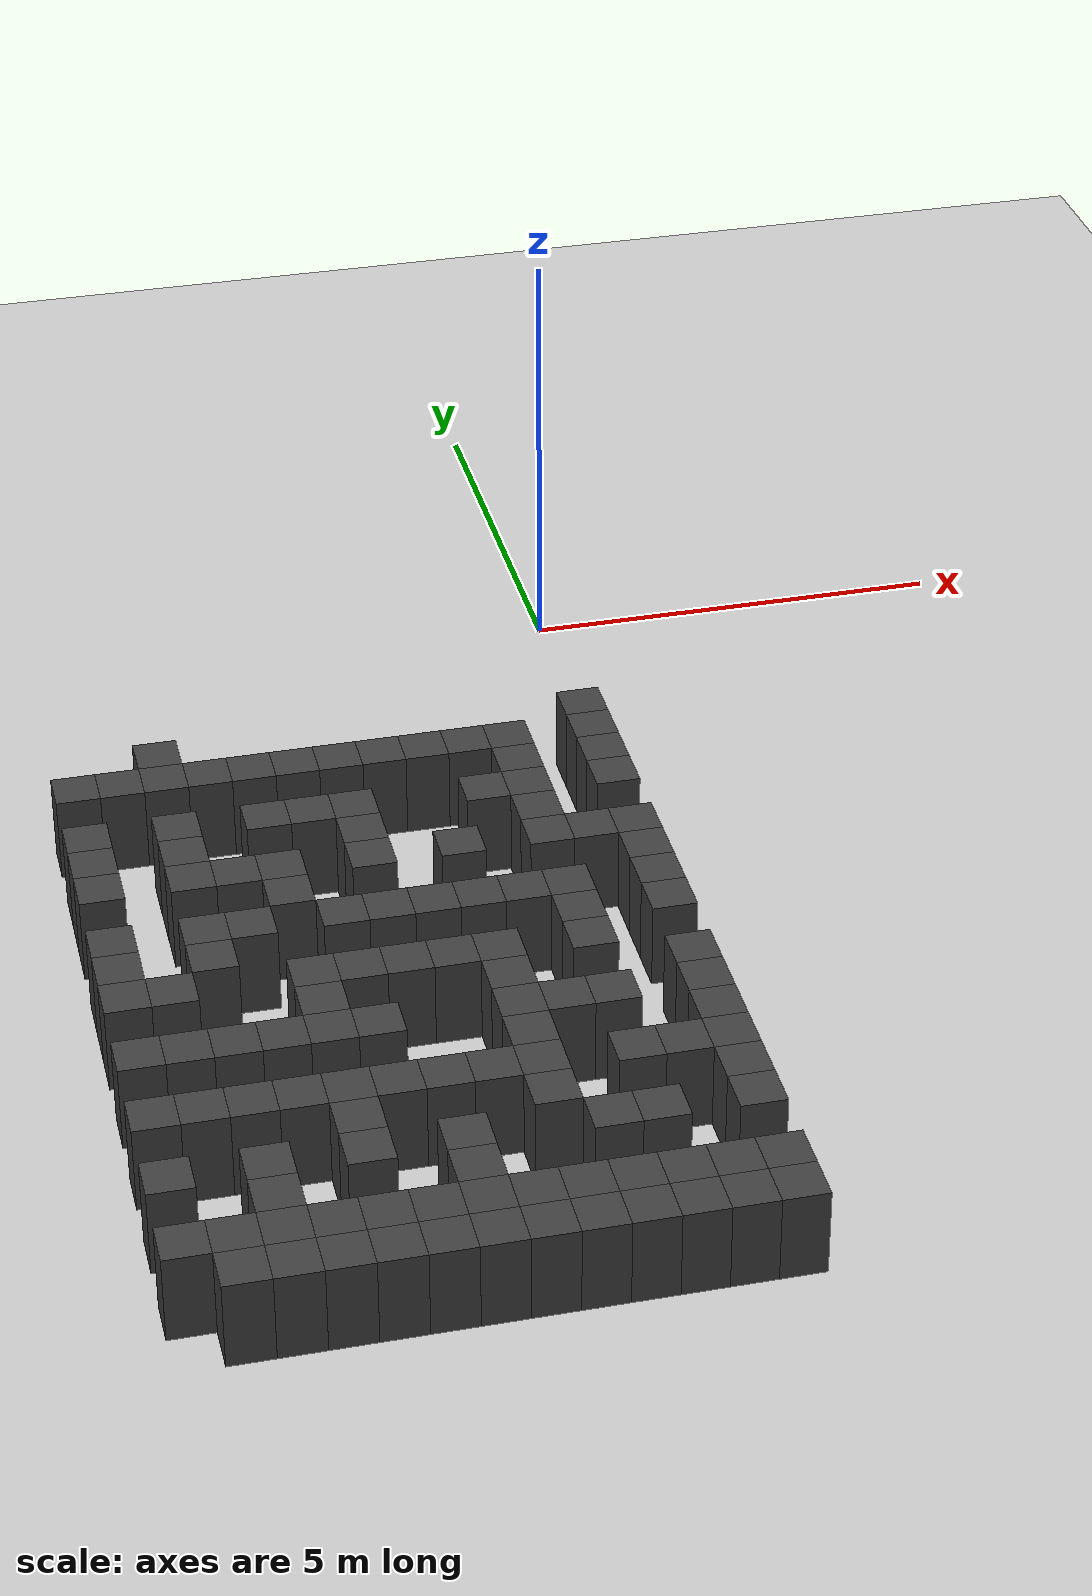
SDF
<sdf version="1.7">
 <world name="map_16734">
  <model name="ground_plane">
   <static>true</static>
   <link name="link">
    <collision name="collision">
     <geometry><plane><normal>0 0 1</normal><size>200 200</size></plane></geometry>
    </collision>
    <visual name="visual">
     <geometry><plane><normal>0 0 1</normal><size>200 200</size></plane></geometry>
     <material><ambient>0.8 0.8 0.8 1</ambient><diffuse>0.8 0.8 0.8 1</diffuse></material>
    </visual>
   </link>
  </model>
  <model name="maze_environment">
   <static>true</static>
   <link name="wall_763">
    <pose>-5.250 -3.250 0.500 0 0 0</pose>
    <collision name="col"><geometry><box><size>0.5 0.5 1.0</size></box></geometry></collision>
    <visual name="vis">
     <geometry><box><size>0.5 0.5 1.0</size></box></geometry>
     <material><ambient>0.15 0.15 0.15 1</ambient><diffuse>0.25 0.25 0.25 1</diffuse></material>
    </visual>
   </link>
   <link name="wall_764">
    <pose>-0.250 -3.250 0.500 0 0 0</pose>
    <collision name="col"><geometry><box><size>0.5 0.5 1.0</size></box></geometry></collision>
    <visual name="vis">
     <geometry><box><size>0.5 0.5 1.0</size></box></geometry>
     <material><ambient>0.15 0.15 0.15 1</ambient><diffuse>0.25 0.25 0.25 1</diffuse></material>
    </visual>
   </link>
   <link name="wall_782">
    <pose>-6.250 -3.750 0.500 0 0 0</pose>
    <collision name="col"><geometry><box><size>0.5 0.5 1.0</size></box></geometry></collision>
    <visual name="vis">
     <geometry><box><size>0.5 0.5 1.0</size></box></geometry>
     <material><ambient>0.15 0.15 0.15 1</ambient><diffuse>0.25 0.25 0.25 1</diffuse></material>
    </visual>
   </link>
   <link name="wall_783">
    <pose>-5.750 -3.750 0.500 0 0 0</pose>
    <collision name="col"><geometry><box><size>0.5 0.5 1.0</size></box></geometry></collision>
    <visual name="vis">
     <geometry><box><size>0.5 0.5 1.0</size></box></geometry>
     <material><ambient>0.15 0.15 0.15 1</ambient><diffuse>0.25 0.25 0.25 1</diffuse></material>
    </visual>
   </link>
   <link name="wall_784">
    <pose>-5.250 -3.750 0.500 0 0 0</pose>
    <collision name="col"><geometry><box><size>0.5 0.5 1.0</size></box></geometry></collision>
    <visual name="vis">
     <geometry><box><size>0.5 0.5 1.0</size></box></geometry>
     <material><ambient>0.15 0.15 0.15 1</ambient><diffuse>0.25 0.25 0.25 1</diffuse></material>
    </visual>
   </link>
   <link name="wall_785">
    <pose>-4.750 -3.750 0.500 0 0 0</pose>
    <collision name="col"><geometry><box><size>0.5 0.5 1.0</size></box></geometry></collision>
    <visual name="vis">
     <geometry><box><size>0.5 0.5 1.0</size></box></geometry>
     <material><ambient>0.15 0.15 0.15 1</ambient><diffuse>0.25 0.25 0.25 1</diffuse></material>
    </visual>
   </link>
   <link name="wall_786">
    <pose>-4.250 -3.750 0.500 0 0 0</pose>
    <collision name="col"><geometry><box><size>0.5 0.5 1.0</size></box></geometry></collision>
    <visual name="vis">
     <geometry><box><size>0.5 0.5 1.0</size></box></geometry>
     <material><ambient>0.15 0.15 0.15 1</ambient><diffuse>0.25 0.25 0.25 1</diffuse></material>
    </visual>
   </link>
   <link name="wall_787">
    <pose>-3.750 -3.750 0.500 0 0 0</pose>
    <collision name="col"><geometry><box><size>0.5 0.5 1.0</size></box></geometry></collision>
    <visual name="vis">
     <geometry><box><size>0.5 0.5 1.0</size></box></geometry>
     <material><ambient>0.15 0.15 0.15 1</ambient><diffuse>0.25 0.25 0.25 1</diffuse></material>
    </visual>
   </link>
   <link name="wall_788">
    <pose>-3.250 -3.750 0.500 0 0 0</pose>
    <collision name="col"><geometry><box><size>0.5 0.5 1.0</size></box></geometry></collision>
    <visual name="vis">
     <geometry><box><size>0.5 0.5 1.0</size></box></geometry>
     <material><ambient>0.15 0.15 0.15 1</ambient><diffuse>0.25 0.25 0.25 1</diffuse></material>
    </visual>
   </link>
   <link name="wall_789">
    <pose>-2.750 -3.750 0.500 0 0 0</pose>
    <collision name="col"><geometry><box><size>0.5 0.5 1.0</size></box></geometry></collision>
    <visual name="vis">
     <geometry><box><size>0.5 0.5 1.0</size></box></geometry>
     <material><ambient>0.15 0.15 0.15 1</ambient><diffuse>0.25 0.25 0.25 1</diffuse></material>
    </visual>
   </link>
   <link name="wall_790">
    <pose>-2.250 -3.750 0.500 0 0 0</pose>
    <collision name="col"><geometry><box><size>0.5 0.5 1.0</size></box></geometry></collision>
    <visual name="vis">
     <geometry><box><size>0.5 0.5 1.0</size></box></geometry>
     <material><ambient>0.15 0.15 0.15 1</ambient><diffuse>0.25 0.25 0.25 1</diffuse></material>
    </visual>
   </link>
   <link name="wall_791">
    <pose>-1.750 -3.750 0.500 0 0 0</pose>
    <collision name="col"><geometry><box><size>0.5 0.5 1.0</size></box></geometry></collision>
    <visual name="vis">
     <geometry><box><size>0.5 0.5 1.0</size></box></geometry>
     <material><ambient>0.15 0.15 0.15 1</ambient><diffuse>0.25 0.25 0.25 1</diffuse></material>
    </visual>
   </link>
   <link name="wall_792">
    <pose>-1.250 -3.750 0.500 0 0 0</pose>
    <collision name="col"><geometry><box><size>0.5 0.5 1.0</size></box></geometry></collision>
    <visual name="vis">
     <geometry><box><size>0.5 0.5 1.0</size></box></geometry>
     <material><ambient>0.15 0.15 0.15 1</ambient><diffuse>0.25 0.25 0.25 1</diffuse></material>
    </visual>
   </link>
   <link name="wall_793">
    <pose>-0.250 -3.750 0.500 0 0 0</pose>
    <collision name="col"><geometry><box><size>0.5 0.5 1.0</size></box></geometry></collision>
    <visual name="vis">
     <geometry><box><size>0.5 0.5 1.0</size></box></geometry>
     <material><ambient>0.15 0.15 0.15 1</ambient><diffuse>0.25 0.25 0.25 1</diffuse></material>
    </visual>
   </link>
   <link name="wall_815">
    <pose>-1.250 -4.250 0.500 0 0 0</pose>
    <collision name="col"><geometry><box><size>0.5 0.5 1.0</size></box></geometry></collision>
    <visual name="vis">
     <geometry><box><size>0.5 0.5 1.0</size></box></geometry>
     <material><ambient>0.15 0.15 0.15 1</ambient><diffuse>0.25 0.25 0.25 1</diffuse></material>
    </visual>
   </link>
   <link name="wall_816">
    <pose>-0.250 -4.250 0.500 0 0 0</pose>
    <collision name="col"><geometry><box><size>0.5 0.5 1.0</size></box></geometry></collision>
    <visual name="vis">
     <geometry><box><size>0.5 0.5 1.0</size></box></geometry>
     <material><ambient>0.15 0.15 0.15 1</ambient><diffuse>0.25 0.25 0.25 1</diffuse></material>
    </visual>
   </link>
   <link name="wall_832">
    <pose>-6.250 -4.750 0.500 0 0 0</pose>
    <collision name="col"><geometry><box><size>0.5 0.5 1.0</size></box></geometry></collision>
    <visual name="vis">
     <geometry><box><size>0.5 0.5 1.0</size></box></geometry>
     <material><ambient>0.15 0.15 0.15 1</ambient><diffuse>0.25 0.25 0.25 1</diffuse></material>
    </visual>
   </link>
   <link name="wall_833">
    <pose>-5.250 -4.750 0.500 0 0 0</pose>
    <collision name="col"><geometry><box><size>0.5 0.5 1.0</size></box></geometry></collision>
    <visual name="vis">
     <geometry><box><size>0.5 0.5 1.0</size></box></geometry>
     <material><ambient>0.15 0.15 0.15 1</ambient><diffuse>0.25 0.25 0.25 1</diffuse></material>
    </visual>
   </link>
   <link name="wall_834">
    <pose>-4.250 -4.750 0.500 0 0 0</pose>
    <collision name="col"><geometry><box><size>0.5 0.5 1.0</size></box></geometry></collision>
    <visual name="vis">
     <geometry><box><size>0.5 0.5 1.0</size></box></geometry>
     <material><ambient>0.15 0.15 0.15 1</ambient><diffuse>0.25 0.25 0.25 1</diffuse></material>
    </visual>
   </link>
   <link name="wall_835">
    <pose>-3.750 -4.750 0.500 0 0 0</pose>
    <collision name="col"><geometry><box><size>0.5 0.5 1.0</size></box></geometry></collision>
    <visual name="vis">
     <geometry><box><size>0.5 0.5 1.0</size></box></geometry>
     <material><ambient>0.15 0.15 0.15 1</ambient><diffuse>0.25 0.25 0.25 1</diffuse></material>
    </visual>
   </link>
   <link name="wall_836">
    <pose>-3.250 -4.750 0.500 0 0 0</pose>
    <collision name="col"><geometry><box><size>0.5 0.5 1.0</size></box></geometry></collision>
    <visual name="vis">
     <geometry><box><size>0.5 0.5 1.0</size></box></geometry>
     <material><ambient>0.15 0.15 0.15 1</ambient><diffuse>0.25 0.25 0.25 1</diffuse></material>
    </visual>
   </link>
   <link name="wall_837">
    <pose>-1.750 -4.750 0.500 0 0 0</pose>
    <collision name="col"><geometry><box><size>0.5 0.5 1.0</size></box></geometry></collision>
    <visual name="vis">
     <geometry><box><size>0.5 0.5 1.0</size></box></geometry>
     <material><ambient>0.15 0.15 0.15 1</ambient><diffuse>0.25 0.25 0.25 1</diffuse></material>
    </visual>
   </link>
   <link name="wall_838">
    <pose>-1.250 -4.750 0.500 0 0 0</pose>
    <collision name="col"><geometry><box><size>0.5 0.5 1.0</size></box></geometry></collision>
    <visual name="vis">
     <geometry><box><size>0.5 0.5 1.0</size></box></geometry>
     <material><ambient>0.15 0.15 0.15 1</ambient><diffuse>0.25 0.25 0.25 1</diffuse></material>
    </visual>
   </link>
   <link name="wall_839">
    <pose>-0.250 -4.750 0.500 0 0 0</pose>
    <collision name="col"><geometry><box><size>0.5 0.5 1.0</size></box></geometry></collision>
    <visual name="vis">
     <geometry><box><size>0.5 0.5 1.0</size></box></geometry>
     <material><ambient>0.15 0.15 0.15 1</ambient><diffuse>0.25 0.25 0.25 1</diffuse></material>
    </visual>
   </link>
   <link name="wall_864">
    <pose>-6.250 -5.250 0.500 0 0 0</pose>
    <collision name="col"><geometry><box><size>0.5 0.5 1.0</size></box></geometry></collision>
    <visual name="vis">
     <geometry><box><size>0.5 0.5 1.0</size></box></geometry>
     <material><ambient>0.15 0.15 0.15 1</ambient><diffuse>0.25 0.25 0.25 1</diffuse></material>
    </visual>
   </link>
   <link name="wall_865">
    <pose>-5.250 -5.250 0.500 0 0 0</pose>
    <collision name="col"><geometry><box><size>0.5 0.5 1.0</size></box></geometry></collision>
    <visual name="vis">
     <geometry><box><size>0.5 0.5 1.0</size></box></geometry>
     <material><ambient>0.15 0.15 0.15 1</ambient><diffuse>0.25 0.25 0.25 1</diffuse></material>
    </visual>
   </link>
   <link name="wall_866">
    <pose>-3.250 -5.250 0.500 0 0 0</pose>
    <collision name="col"><geometry><box><size>0.5 0.5 1.0</size></box></geometry></collision>
    <visual name="vis">
     <geometry><box><size>0.5 0.5 1.0</size></box></geometry>
     <material><ambient>0.15 0.15 0.15 1</ambient><diffuse>0.25 0.25 0.25 1</diffuse></material>
    </visual>
   </link>
   <link name="wall_867">
    <pose>-1.250 -5.250 0.500 0 0 0</pose>
    <collision name="col"><geometry><box><size>0.5 0.5 1.0</size></box></geometry></collision>
    <visual name="vis">
     <geometry><box><size>0.5 0.5 1.0</size></box></geometry>
     <material><ambient>0.15 0.15 0.15 1</ambient><diffuse>0.25 0.25 0.25 1</diffuse></material>
    </visual>
   </link>
   <link name="wall_884">
    <pose>-6.250 -5.750 0.500 0 0 0</pose>
    <collision name="col"><geometry><box><size>0.5 0.5 1.0</size></box></geometry></collision>
    <visual name="vis">
     <geometry><box><size>0.5 0.5 1.0</size></box></geometry>
     <material><ambient>0.15 0.15 0.15 1</ambient><diffuse>0.25 0.25 0.25 1</diffuse></material>
    </visual>
   </link>
   <link name="wall_885">
    <pose>-5.250 -5.750 0.500 0 0 0</pose>
    <collision name="col"><geometry><box><size>0.5 0.5 1.0</size></box></geometry></collision>
    <visual name="vis">
     <geometry><box><size>0.5 0.5 1.0</size></box></geometry>
     <material><ambient>0.15 0.15 0.15 1</ambient><diffuse>0.25 0.25 0.25 1</diffuse></material>
    </visual>
   </link>
   <link name="wall_886">
    <pose>-4.750 -5.750 0.500 0 0 0</pose>
    <collision name="col"><geometry><box><size>0.5 0.5 1.0</size></box></geometry></collision>
    <visual name="vis">
     <geometry><box><size>0.5 0.5 1.0</size></box></geometry>
     <material><ambient>0.15 0.15 0.15 1</ambient><diffuse>0.25 0.25 0.25 1</diffuse></material>
    </visual>
   </link>
   <link name="wall_887">
    <pose>-4.250 -5.750 0.500 0 0 0</pose>
    <collision name="col"><geometry><box><size>0.5 0.5 1.0</size></box></geometry></collision>
    <visual name="vis">
     <geometry><box><size>0.5 0.5 1.0</size></box></geometry>
     <material><ambient>0.15 0.15 0.15 1</ambient><diffuse>0.25 0.25 0.25 1</diffuse></material>
    </visual>
   </link>
   <link name="wall_888">
    <pose>-3.250 -5.750 0.500 0 0 0</pose>
    <collision name="col"><geometry><box><size>0.5 0.5 1.0</size></box></geometry></collision>
    <visual name="vis">
     <geometry><box><size>0.5 0.5 1.0</size></box></geometry>
     <material><ambient>0.15 0.15 0.15 1</ambient><diffuse>0.25 0.25 0.25 1</diffuse></material>
    </visual>
   </link>
   <link name="wall_889">
    <pose>-2.250 -5.750 0.500 0 0 0</pose>
    <collision name="col"><geometry><box><size>0.5 0.5 1.0</size></box></geometry></collision>
    <visual name="vis">
     <geometry><box><size>0.5 0.5 1.0</size></box></geometry>
     <material><ambient>0.15 0.15 0.15 1</ambient><diffuse>0.25 0.25 0.25 1</diffuse></material>
    </visual>
   </link>
   <link name="wall_890">
    <pose>-1.250 -5.750 0.500 0 0 0</pose>
    <collision name="col"><geometry><box><size>0.5 0.5 1.0</size></box></geometry></collision>
    <visual name="vis">
     <geometry><box><size>0.5 0.5 1.0</size></box></geometry>
     <material><ambient>0.15 0.15 0.15 1</ambient><diffuse>0.25 0.25 0.25 1</diffuse></material>
    </visual>
   </link>
   <link name="wall_891">
    <pose>-0.750 -5.750 0.500 0 0 0</pose>
    <collision name="col"><geometry><box><size>0.5 0.5 1.0</size></box></geometry></collision>
    <visual name="vis">
     <geometry><box><size>0.5 0.5 1.0</size></box></geometry>
     <material><ambient>0.15 0.15 0.15 1</ambient><diffuse>0.25 0.25 0.25 1</diffuse></material>
    </visual>
   </link>
   <link name="wall_892">
    <pose>-0.250 -5.750 0.500 0 0 0</pose>
    <collision name="col"><geometry><box><size>0.5 0.5 1.0</size></box></geometry></collision>
    <visual name="vis">
     <geometry><box><size>0.5 0.5 1.0</size></box></geometry>
     <material><ambient>0.15 0.15 0.15 1</ambient><diffuse>0.25 0.25 0.25 1</diffuse></material>
    </visual>
   </link>
   <link name="wall_913">
    <pose>-4.250 -6.250 0.500 0 0 0</pose>
    <collision name="col"><geometry><box><size>0.5 0.5 1.0</size></box></geometry></collision>
    <visual name="vis">
     <geometry><box><size>0.5 0.5 1.0</size></box></geometry>
     <material><ambient>0.15 0.15 0.15 1</ambient><diffuse>0.25 0.25 0.25 1</diffuse></material>
    </visual>
   </link>
   <link name="wall_914">
    <pose>-0.250 -6.250 0.500 0 0 0</pose>
    <collision name="col"><geometry><box><size>0.5 0.5 1.0</size></box></geometry></collision>
    <visual name="vis">
     <geometry><box><size>0.5 0.5 1.0</size></box></geometry>
     <material><ambient>0.15 0.15 0.15 1</ambient><diffuse>0.25 0.25 0.25 1</diffuse></material>
    </visual>
   </link>
   <link name="wall_929">
    <pose>-6.250 -6.750 0.500 0 0 0</pose>
    <collision name="col"><geometry><box><size>0.5 0.5 1.0</size></box></geometry></collision>
    <visual name="vis">
     <geometry><box><size>0.5 0.5 1.0</size></box></geometry>
     <material><ambient>0.15 0.15 0.15 1</ambient><diffuse>0.25 0.25 0.25 1</diffuse></material>
    </visual>
   </link>
   <link name="wall_930">
    <pose>-5.250 -6.750 0.500 0 0 0</pose>
    <collision name="col"><geometry><box><size>0.5 0.5 1.0</size></box></geometry></collision>
    <visual name="vis">
     <geometry><box><size>0.5 0.5 1.0</size></box></geometry>
     <material><ambient>0.15 0.15 0.15 1</ambient><diffuse>0.25 0.25 0.25 1</diffuse></material>
    </visual>
   </link>
   <link name="wall_931">
    <pose>-4.750 -6.750 0.500 0 0 0</pose>
    <collision name="col"><geometry><box><size>0.5 0.5 1.0</size></box></geometry></collision>
    <visual name="vis">
     <geometry><box><size>0.5 0.5 1.0</size></box></geometry>
     <material><ambient>0.15 0.15 0.15 1</ambient><diffuse>0.25 0.25 0.25 1</diffuse></material>
    </visual>
   </link>
   <link name="wall_932">
    <pose>-3.750 -6.750 0.500 0 0 0</pose>
    <collision name="col"><geometry><box><size>0.5 0.5 1.0</size></box></geometry></collision>
    <visual name="vis">
     <geometry><box><size>0.5 0.5 1.0</size></box></geometry>
     <material><ambient>0.15 0.15 0.15 1</ambient><diffuse>0.25 0.25 0.25 1</diffuse></material>
    </visual>
   </link>
   <link name="wall_933">
    <pose>-3.250 -6.750 0.500 0 0 0</pose>
    <collision name="col"><geometry><box><size>0.5 0.5 1.0</size></box></geometry></collision>
    <visual name="vis">
     <geometry><box><size>0.5 0.5 1.0</size></box></geometry>
     <material><ambient>0.15 0.15 0.15 1</ambient><diffuse>0.25 0.25 0.25 1</diffuse></material>
    </visual>
   </link>
   <link name="wall_934">
    <pose>-2.750 -6.750 0.500 0 0 0</pose>
    <collision name="col"><geometry><box><size>0.5 0.5 1.0</size></box></geometry></collision>
    <visual name="vis">
     <geometry><box><size>0.5 0.5 1.0</size></box></geometry>
     <material><ambient>0.15 0.15 0.15 1</ambient><diffuse>0.25 0.25 0.25 1</diffuse></material>
    </visual>
   </link>
   <link name="wall_935">
    <pose>-2.250 -6.750 0.500 0 0 0</pose>
    <collision name="col"><geometry><box><size>0.5 0.5 1.0</size></box></geometry></collision>
    <visual name="vis">
     <geometry><box><size>0.5 0.5 1.0</size></box></geometry>
     <material><ambient>0.15 0.15 0.15 1</ambient><diffuse>0.25 0.25 0.25 1</diffuse></material>
    </visual>
   </link>
   <link name="wall_936">
    <pose>-1.750 -6.750 0.500 0 0 0</pose>
    <collision name="col"><geometry><box><size>0.5 0.5 1.0</size></box></geometry></collision>
    <visual name="vis">
     <geometry><box><size>0.5 0.5 1.0</size></box></geometry>
     <material><ambient>0.15 0.15 0.15 1</ambient><diffuse>0.25 0.25 0.25 1</diffuse></material>
    </visual>
   </link>
   <link name="wall_937">
    <pose>-1.250 -6.750 0.500 0 0 0</pose>
    <collision name="col"><geometry><box><size>0.5 0.5 1.0</size></box></geometry></collision>
    <visual name="vis">
     <geometry><box><size>0.5 0.5 1.0</size></box></geometry>
     <material><ambient>0.15 0.15 0.15 1</ambient><diffuse>0.25 0.25 0.25 1</diffuse></material>
    </visual>
   </link>
   <link name="wall_938">
    <pose>-0.250 -6.750 0.500 0 0 0</pose>
    <collision name="col"><geometry><box><size>0.5 0.5 1.0</size></box></geometry></collision>
    <visual name="vis">
     <geometry><box><size>0.5 0.5 1.0</size></box></geometry>
     <material><ambient>0.15 0.15 0.15 1</ambient><diffuse>0.25 0.25 0.25 1</diffuse></material>
    </visual>
   </link>
   <link name="wall_959">
    <pose>-6.250 -7.250 0.500 0 0 0</pose>
    <collision name="col"><geometry><box><size>0.5 0.5 1.0</size></box></geometry></collision>
    <visual name="vis">
     <geometry><box><size>0.5 0.5 1.0</size></box></geometry>
     <material><ambient>0.15 0.15 0.15 1</ambient><diffuse>0.25 0.25 0.25 1</diffuse></material>
    </visual>
   </link>
   <link name="wall_960">
    <pose>-5.250 -7.250 0.500 0 0 0</pose>
    <collision name="col"><geometry><box><size>0.5 0.5 1.0</size></box></geometry></collision>
    <visual name="vis">
     <geometry><box><size>0.5 0.5 1.0</size></box></geometry>
     <material><ambient>0.15 0.15 0.15 1</ambient><diffuse>0.25 0.25 0.25 1</diffuse></material>
    </visual>
   </link>
   <link name="wall_961">
    <pose>-1.250 -7.250 0.500 0 0 0</pose>
    <collision name="col"><geometry><box><size>0.5 0.5 1.0</size></box></geometry></collision>
    <visual name="vis">
     <geometry><box><size>0.5 0.5 1.0</size></box></geometry>
     <material><ambient>0.15 0.15 0.15 1</ambient><diffuse>0.25 0.25 0.25 1</diffuse></material>
    </visual>
   </link>
   <link name="wall_962">
    <pose>-0.250 -7.250 0.500 0 0 0</pose>
    <collision name="col"><geometry><box><size>0.5 0.5 1.0</size></box></geometry></collision>
    <visual name="vis">
     <geometry><box><size>0.5 0.5 1.0</size></box></geometry>
     <material><ambient>0.15 0.15 0.15 1</ambient><diffuse>0.25 0.25 0.25 1</diffuse></material>
    </visual>
   </link>
   <link name="wall_976">
    <pose>-6.250 -7.750 0.500 0 0 0</pose>
    <collision name="col"><geometry><box><size>0.5 0.5 1.0</size></box></geometry></collision>
    <visual name="vis">
     <geometry><box><size>0.5 0.5 1.0</size></box></geometry>
     <material><ambient>0.15 0.15 0.15 1</ambient><diffuse>0.25 0.25 0.25 1</diffuse></material>
    </visual>
   </link>
   <link name="wall_977">
    <pose>-5.750 -7.750 0.500 0 0 0</pose>
    <collision name="col"><geometry><box><size>0.5 0.5 1.0</size></box></geometry></collision>
    <visual name="vis">
     <geometry><box><size>0.5 0.5 1.0</size></box></geometry>
     <material><ambient>0.15 0.15 0.15 1</ambient><diffuse>0.25 0.25 0.25 1</diffuse></material>
    </visual>
   </link>
   <link name="wall_978">
    <pose>-4.250 -7.750 0.500 0 0 0</pose>
    <collision name="col"><geometry><box><size>0.5 0.5 1.0</size></box></geometry></collision>
    <visual name="vis">
     <geometry><box><size>0.5 0.5 1.0</size></box></geometry>
     <material><ambient>0.15 0.15 0.15 1</ambient><diffuse>0.25 0.25 0.25 1</diffuse></material>
    </visual>
   </link>
   <link name="wall_979">
    <pose>-3.750 -7.750 0.500 0 0 0</pose>
    <collision name="col"><geometry><box><size>0.5 0.5 1.0</size></box></geometry></collision>
    <visual name="vis">
     <geometry><box><size>0.5 0.5 1.0</size></box></geometry>
     <material><ambient>0.15 0.15 0.15 1</ambient><diffuse>0.25 0.25 0.25 1</diffuse></material>
    </visual>
   </link>
   <link name="wall_980">
    <pose>-3.250 -7.750 0.500 0 0 0</pose>
    <collision name="col"><geometry><box><size>0.5 0.5 1.0</size></box></geometry></collision>
    <visual name="vis">
     <geometry><box><size>0.5 0.5 1.0</size></box></geometry>
     <material><ambient>0.15 0.15 0.15 1</ambient><diffuse>0.25 0.25 0.25 1</diffuse></material>
    </visual>
   </link>
   <link name="wall_981">
    <pose>-2.750 -7.750 0.500 0 0 0</pose>
    <collision name="col"><geometry><box><size>0.5 0.5 1.0</size></box></geometry></collision>
    <visual name="vis">
     <geometry><box><size>0.5 0.5 1.0</size></box></geometry>
     <material><ambient>0.15 0.15 0.15 1</ambient><diffuse>0.25 0.25 0.25 1</diffuse></material>
    </visual>
   </link>
   <link name="wall_982">
    <pose>-2.250 -7.750 0.500 0 0 0</pose>
    <collision name="col"><geometry><box><size>0.5 0.5 1.0</size></box></geometry></collision>
    <visual name="vis">
     <geometry><box><size>0.5 0.5 1.0</size></box></geometry>
     <material><ambient>0.15 0.15 0.15 1</ambient><diffuse>0.25 0.25 0.25 1</diffuse></material>
    </visual>
   </link>
   <link name="wall_983">
    <pose>-1.250 -7.750 0.500 0 0 0</pose>
    <collision name="col"><geometry><box><size>0.5 0.5 1.0</size></box></geometry></collision>
    <visual name="vis">
     <geometry><box><size>0.5 0.5 1.0</size></box></geometry>
     <material><ambient>0.15 0.15 0.15 1</ambient><diffuse>0.25 0.25 0.25 1</diffuse></material>
    </visual>
   </link>
   <link name="wall_1006">
    <pose>-4.250 -8.250 0.500 0 0 0</pose>
    <collision name="col"><geometry><box><size>0.5 0.5 1.0</size></box></geometry></collision>
    <visual name="vis">
     <geometry><box><size>0.5 0.5 1.0</size></box></geometry>
     <material><ambient>0.15 0.15 0.15 1</ambient><diffuse>0.25 0.25 0.25 1</diffuse></material>
    </visual>
   </link>
   <link name="wall_1007">
    <pose>-2.250 -8.250 0.500 0 0 0</pose>
    <collision name="col"><geometry><box><size>0.5 0.5 1.0</size></box></geometry></collision>
    <visual name="vis">
     <geometry><box><size>0.5 0.5 1.0</size></box></geometry>
     <material><ambient>0.15 0.15 0.15 1</ambient><diffuse>0.25 0.25 0.25 1</diffuse></material>
    </visual>
   </link>
   <link name="wall_1008">
    <pose>-0.250 -8.250 0.500 0 0 0</pose>
    <collision name="col"><geometry><box><size>0.5 0.5 1.0</size></box></geometry></collision>
    <visual name="vis">
     <geometry><box><size>0.5 0.5 1.0</size></box></geometry>
     <material><ambient>0.15 0.15 0.15 1</ambient><diffuse>0.25 0.25 0.25 1</diffuse></material>
    </visual>
   </link>
   <link name="wall_1021">
    <pose>-6.250 -8.750 0.500 0 0 0</pose>
    <collision name="col"><geometry><box><size>0.5 0.5 1.0</size></box></geometry></collision>
    <visual name="vis">
     <geometry><box><size>0.5 0.5 1.0</size></box></geometry>
     <material><ambient>0.15 0.15 0.15 1</ambient><diffuse>0.25 0.25 0.25 1</diffuse></material>
    </visual>
   </link>
   <link name="wall_1022">
    <pose>-5.750 -8.750 0.500 0 0 0</pose>
    <collision name="col"><geometry><box><size>0.5 0.5 1.0</size></box></geometry></collision>
    <visual name="vis">
     <geometry><box><size>0.5 0.5 1.0</size></box></geometry>
     <material><ambient>0.15 0.15 0.15 1</ambient><diffuse>0.25 0.25 0.25 1</diffuse></material>
    </visual>
   </link>
   <link name="wall_1023">
    <pose>-5.250 -8.750 0.500 0 0 0</pose>
    <collision name="col"><geometry><box><size>0.5 0.5 1.0</size></box></geometry></collision>
    <visual name="vis">
     <geometry><box><size>0.5 0.5 1.0</size></box></geometry>
     <material><ambient>0.15 0.15 0.15 1</ambient><diffuse>0.25 0.25 0.25 1</diffuse></material>
    </visual>
   </link>
   <link name="wall_1024">
    <pose>-4.750 -8.750 0.500 0 0 0</pose>
    <collision name="col"><geometry><box><size>0.5 0.5 1.0</size></box></geometry></collision>
    <visual name="vis">
     <geometry><box><size>0.5 0.5 1.0</size></box></geometry>
     <material><ambient>0.15 0.15 0.15 1</ambient><diffuse>0.25 0.25 0.25 1</diffuse></material>
    </visual>
   </link>
   <link name="wall_1025">
    <pose>-4.250 -8.750 0.500 0 0 0</pose>
    <collision name="col"><geometry><box><size>0.5 0.5 1.0</size></box></geometry></collision>
    <visual name="vis">
     <geometry><box><size>0.5 0.5 1.0</size></box></geometry>
     <material><ambient>0.15 0.15 0.15 1</ambient><diffuse>0.25 0.25 0.25 1</diffuse></material>
    </visual>
   </link>
   <link name="wall_1026">
    <pose>-3.750 -8.750 0.500 0 0 0</pose>
    <collision name="col"><geometry><box><size>0.5 0.5 1.0</size></box></geometry></collision>
    <visual name="vis">
     <geometry><box><size>0.5 0.5 1.0</size></box></geometry>
     <material><ambient>0.15 0.15 0.15 1</ambient><diffuse>0.25 0.25 0.25 1</diffuse></material>
    </visual>
   </link>
   <link name="wall_1027">
    <pose>-2.250 -8.750 0.500 0 0 0</pose>
    <collision name="col"><geometry><box><size>0.5 0.5 1.0</size></box></geometry></collision>
    <visual name="vis">
     <geometry><box><size>0.5 0.5 1.0</size></box></geometry>
     <material><ambient>0.15 0.15 0.15 1</ambient><diffuse>0.25 0.25 0.25 1</diffuse></material>
    </visual>
   </link>
   <link name="wall_1028">
    <pose>-1.750 -8.750 0.500 0 0 0</pose>
    <collision name="col"><geometry><box><size>0.5 0.5 1.0</size></box></geometry></collision>
    <visual name="vis">
     <geometry><box><size>0.5 0.5 1.0</size></box></geometry>
     <material><ambient>0.15 0.15 0.15 1</ambient><diffuse>0.25 0.25 0.25 1</diffuse></material>
    </visual>
   </link>
   <link name="wall_1029">
    <pose>-1.250 -8.750 0.500 0 0 0</pose>
    <collision name="col"><geometry><box><size>0.5 0.5 1.0</size></box></geometry></collision>
    <visual name="vis">
     <geometry><box><size>0.5 0.5 1.0</size></box></geometry>
     <material><ambient>0.15 0.15 0.15 1</ambient><diffuse>0.25 0.25 0.25 1</diffuse></material>
    </visual>
   </link>
   <link name="wall_1030">
    <pose>-0.250 -8.750 0.500 0 0 0</pose>
    <collision name="col"><geometry><box><size>0.5 0.5 1.0</size></box></geometry></collision>
    <visual name="vis">
     <geometry><box><size>0.5 0.5 1.0</size></box></geometry>
     <material><ambient>0.15 0.15 0.15 1</ambient><diffuse>0.25 0.25 0.25 1</diffuse></material>
    </visual>
   </link>
   <link name="wall_1051">
    <pose>-2.250 -9.250 0.500 0 0 0</pose>
    <collision name="col"><geometry><box><size>0.5 0.5 1.0</size></box></geometry></collision>
    <visual name="vis">
     <geometry><box><size>0.5 0.5 1.0</size></box></geometry>
     <material><ambient>0.15 0.15 0.15 1</ambient><diffuse>0.25 0.25 0.25 1</diffuse></material>
    </visual>
   </link>
   <link name="wall_1052">
    <pose>-0.250 -9.250 0.500 0 0 0</pose>
    <collision name="col"><geometry><box><size>0.5 0.5 1.0</size></box></geometry></collision>
    <visual name="vis">
     <geometry><box><size>0.5 0.5 1.0</size></box></geometry>
     <material><ambient>0.15 0.15 0.15 1</ambient><diffuse>0.25 0.25 0.25 1</diffuse></material>
    </visual>
   </link>
   <link name="wall_1071">
    <pose>-6.250 -9.750 0.500 0 0 0</pose>
    <collision name="col"><geometry><box><size>0.5 0.5 1.0</size></box></geometry></collision>
    <visual name="vis">
     <geometry><box><size>0.5 0.5 1.0</size></box></geometry>
     <material><ambient>0.15 0.15 0.15 1</ambient><diffuse>0.25 0.25 0.25 1</diffuse></material>
    </visual>
   </link>
   <link name="wall_1072">
    <pose>-5.750 -9.750 0.500 0 0 0</pose>
    <collision name="col"><geometry><box><size>0.5 0.5 1.0</size></box></geometry></collision>
    <visual name="vis">
     <geometry><box><size>0.5 0.5 1.0</size></box></geometry>
     <material><ambient>0.15 0.15 0.15 1</ambient><diffuse>0.25 0.25 0.25 1</diffuse></material>
    </visual>
   </link>
   <link name="wall_1073">
    <pose>-5.250 -9.750 0.500 0 0 0</pose>
    <collision name="col"><geometry><box><size>0.5 0.5 1.0</size></box></geometry></collision>
    <visual name="vis">
     <geometry><box><size>0.5 0.5 1.0</size></box></geometry>
     <material><ambient>0.15 0.15 0.15 1</ambient><diffuse>0.25 0.25 0.25 1</diffuse></material>
    </visual>
   </link>
   <link name="wall_1074">
    <pose>-4.750 -9.750 0.500 0 0 0</pose>
    <collision name="col"><geometry><box><size>0.5 0.5 1.0</size></box></geometry></collision>
    <visual name="vis">
     <geometry><box><size>0.5 0.5 1.0</size></box></geometry>
     <material><ambient>0.15 0.15 0.15 1</ambient><diffuse>0.25 0.25 0.25 1</diffuse></material>
    </visual>
   </link>
   <link name="wall_1075">
    <pose>-4.250 -9.750 0.500 0 0 0</pose>
    <collision name="col"><geometry><box><size>0.5 0.5 1.0</size></box></geometry></collision>
    <visual name="vis">
     <geometry><box><size>0.5 0.5 1.0</size></box></geometry>
     <material><ambient>0.15 0.15 0.15 1</ambient><diffuse>0.25 0.25 0.25 1</diffuse></material>
    </visual>
   </link>
   <link name="wall_1076">
    <pose>-3.750 -9.750 0.500 0 0 0</pose>
    <collision name="col"><geometry><box><size>0.5 0.5 1.0</size></box></geometry></collision>
    <visual name="vis">
     <geometry><box><size>0.5 0.5 1.0</size></box></geometry>
     <material><ambient>0.15 0.15 0.15 1</ambient><diffuse>0.25 0.25 0.25 1</diffuse></material>
    </visual>
   </link>
   <link name="wall_1077">
    <pose>-3.250 -9.750 0.500 0 0 0</pose>
    <collision name="col"><geometry><box><size>0.5 0.5 1.0</size></box></geometry></collision>
    <visual name="vis">
     <geometry><box><size>0.5 0.5 1.0</size></box></geometry>
     <material><ambient>0.15 0.15 0.15 1</ambient><diffuse>0.25 0.25 0.25 1</diffuse></material>
    </visual>
   </link>
   <link name="wall_1078">
    <pose>-2.750 -9.750 0.500 0 0 0</pose>
    <collision name="col"><geometry><box><size>0.5 0.5 1.0</size></box></geometry></collision>
    <visual name="vis">
     <geometry><box><size>0.5 0.5 1.0</size></box></geometry>
     <material><ambient>0.15 0.15 0.15 1</ambient><diffuse>0.25 0.25 0.25 1</diffuse></material>
    </visual>
   </link>
   <link name="wall_1079">
    <pose>-2.250 -9.750 0.500 0 0 0</pose>
    <collision name="col"><geometry><box><size>0.5 0.5 1.0</size></box></geometry></collision>
    <visual name="vis">
     <geometry><box><size>0.5 0.5 1.0</size></box></geometry>
     <material><ambient>0.15 0.15 0.15 1</ambient><diffuse>0.25 0.25 0.25 1</diffuse></material>
    </visual>
   </link>
   <link name="wall_1080">
    <pose>-1.250 -9.750 0.500 0 0 0</pose>
    <collision name="col"><geometry><box><size>0.5 0.5 1.0</size></box></geometry></collision>
    <visual name="vis">
     <geometry><box><size>0.5 0.5 1.0</size></box></geometry>
     <material><ambient>0.15 0.15 0.15 1</ambient><diffuse>0.25 0.25 0.25 1</diffuse></material>
    </visual>
   </link>
   <link name="wall_1081">
    <pose>-0.750 -9.750 0.500 0 0 0</pose>
    <collision name="col"><geometry><box><size>0.5 0.5 1.0</size></box></geometry></collision>
    <visual name="vis">
     <geometry><box><size>0.5 0.5 1.0</size></box></geometry>
     <material><ambient>0.15 0.15 0.15 1</ambient><diffuse>0.25 0.25 0.25 1</diffuse></material>
    </visual>
   </link>
   <link name="wall_1082">
    <pose>-0.250 -9.750 0.500 0 0 0</pose>
    <collision name="col"><geometry><box><size>0.5 0.5 1.0</size></box></geometry></collision>
    <visual name="vis">
     <geometry><box><size>0.5 0.5 1.0</size></box></geometry>
     <material><ambient>0.15 0.15 0.15 1</ambient><diffuse>0.25 0.25 0.25 1</diffuse></material>
    </visual>
   </link>
   <link name="wall_1100">
    <pose>-4.250 -10.250 0.500 0 0 0</pose>
    <collision name="col"><geometry><box><size>0.5 0.5 1.0</size></box></geometry></collision>
    <visual name="vis">
     <geometry><box><size>0.5 0.5 1.0</size></box></geometry>
     <material><ambient>0.15 0.15 0.15 1</ambient><diffuse>0.25 0.25 0.25 1</diffuse></material>
    </visual>
   </link>
   <link name="wall_1101">
    <pose>-2.250 -10.250 0.500 0 0 0</pose>
    <collision name="col"><geometry><box><size>0.5 0.5 1.0</size></box></geometry></collision>
    <visual name="vis">
     <geometry><box><size>0.5 0.5 1.0</size></box></geometry>
     <material><ambient>0.15 0.15 0.15 1</ambient><diffuse>0.25 0.25 0.25 1</diffuse></material>
    </visual>
   </link>
   <link name="wall_1102">
    <pose>-0.250 -10.250 0.500 0 0 0</pose>
    <collision name="col"><geometry><box><size>0.5 0.5 1.0</size></box></geometry></collision>
    <visual name="vis">
     <geometry><box><size>0.5 0.5 1.0</size></box></geometry>
     <material><ambient>0.15 0.15 0.15 1</ambient><diffuse>0.25 0.25 0.25 1</diffuse></material>
    </visual>
   </link>
   <link name="wall_1117">
    <pose>-6.250 -10.750 0.500 0 0 0</pose>
    <collision name="col"><geometry><box><size>0.5 0.5 1.0</size></box></geometry></collision>
    <visual name="vis">
     <geometry><box><size>0.5 0.5 1.0</size></box></geometry>
     <material><ambient>0.15 0.15 0.15 1</ambient><diffuse>0.25 0.25 0.25 1</diffuse></material>
    </visual>
   </link>
   <link name="wall_1118">
    <pose>-5.250 -10.750 0.500 0 0 0</pose>
    <collision name="col"><geometry><box><size>0.5 0.5 1.0</size></box></geometry></collision>
    <visual name="vis">
     <geometry><box><size>0.5 0.5 1.0</size></box></geometry>
     <material><ambient>0.15 0.15 0.15 1</ambient><diffuse>0.25 0.25 0.25 1</diffuse></material>
    </visual>
   </link>
   <link name="wall_1119">
    <pose>-4.250 -10.750 0.500 0 0 0</pose>
    <collision name="col"><geometry><box><size>0.5 0.5 1.0</size></box></geometry></collision>
    <visual name="vis">
     <geometry><box><size>0.5 0.5 1.0</size></box></geometry>
     <material><ambient>0.15 0.15 0.15 1</ambient><diffuse>0.25 0.25 0.25 1</diffuse></material>
    </visual>
   </link>
   <link name="wall_1120">
    <pose>-3.250 -10.750 0.500 0 0 0</pose>
    <collision name="col"><geometry><box><size>0.5 0.5 1.0</size></box></geometry></collision>
    <visual name="vis">
     <geometry><box><size>0.5 0.5 1.0</size></box></geometry>
     <material><ambient>0.15 0.15 0.15 1</ambient><diffuse>0.25 0.25 0.25 1</diffuse></material>
    </visual>
   </link>
   <link name="wall_1121">
    <pose>-1.750 -10.750 0.500 0 0 0</pose>
    <collision name="col"><geometry><box><size>0.5 0.5 1.0</size></box></geometry></collision>
    <visual name="vis">
     <geometry><box><size>0.5 0.5 1.0</size></box></geometry>
     <material><ambient>0.15 0.15 0.15 1</ambient><diffuse>0.25 0.25 0.25 1</diffuse></material>
    </visual>
   </link>
   <link name="wall_1122">
    <pose>-1.250 -10.750 0.500 0 0 0</pose>
    <collision name="col"><geometry><box><size>0.5 0.5 1.0</size></box></geometry></collision>
    <visual name="vis">
     <geometry><box><size>0.5 0.5 1.0</size></box></geometry>
     <material><ambient>0.15 0.15 0.15 1</ambient><diffuse>0.25 0.25 0.25 1</diffuse></material>
    </visual>
   </link>
   <link name="wall_1123">
    <pose>-0.250 -10.750 0.500 0 0 0</pose>
    <collision name="col"><geometry><box><size>0.5 0.5 1.0</size></box></geometry></collision>
    <visual name="vis">
     <geometry><box><size>0.5 0.5 1.0</size></box></geometry>
     <material><ambient>0.15 0.15 0.15 1</ambient><diffuse>0.25 0.25 0.25 1</diffuse></material>
    </visual>
   </link>
   <link name="wall_1142">
    <pose>-5.250 -11.250 0.500 0 0 0</pose>
    <collision name="col"><geometry><box><size>0.5 0.5 1.0</size></box></geometry></collision>
    <visual name="vis">
     <geometry><box><size>0.5 0.5 1.0</size></box></geometry>
     <material><ambient>0.15 0.15 0.15 1</ambient><diffuse>0.25 0.25 0.25 1</diffuse></material>
    </visual>
   </link>
   <link name="wall_1143">
    <pose>-3.250 -11.250 0.500 0 0 0</pose>
    <collision name="col"><geometry><box><size>0.5 0.5 1.0</size></box></geometry></collision>
    <visual name="vis">
     <geometry><box><size>0.5 0.5 1.0</size></box></geometry>
     <material><ambient>0.15 0.15 0.15 1</ambient><diffuse>0.25 0.25 0.25 1</diffuse></material>
    </visual>
   </link>
   <link name="wall_1160">
    <pose>-6.250 -11.750 0.500 0 0 0</pose>
    <collision name="col"><geometry><box><size>0.5 0.5 1.0</size></box></geometry></collision>
    <visual name="vis">
     <geometry><box><size>0.5 0.5 1.0</size></box></geometry>
     <material><ambient>0.15 0.15 0.15 1</ambient><diffuse>0.25 0.25 0.25 1</diffuse></material>
    </visual>
   </link>
   <link name="wall_1161">
    <pose>-5.750 -11.750 0.500 0 0 0</pose>
    <collision name="col"><geometry><box><size>0.5 0.5 1.0</size></box></geometry></collision>
    <visual name="vis">
     <geometry><box><size>0.5 0.5 1.0</size></box></geometry>
     <material><ambient>0.15 0.15 0.15 1</ambient><diffuse>0.25 0.25 0.25 1</diffuse></material>
    </visual>
   </link>
   <link name="wall_1162">
    <pose>-5.250 -11.750 0.500 0 0 0</pose>
    <collision name="col"><geometry><box><size>0.5 0.5 1.0</size></box></geometry></collision>
    <visual name="vis">
     <geometry><box><size>0.5 0.5 1.0</size></box></geometry>
     <material><ambient>0.15 0.15 0.15 1</ambient><diffuse>0.25 0.25 0.25 1</diffuse></material>
    </visual>
   </link>
   <link name="wall_1163">
    <pose>-4.750 -11.750 0.500 0 0 0</pose>
    <collision name="col"><geometry><box><size>0.5 0.5 1.0</size></box></geometry></collision>
    <visual name="vis">
     <geometry><box><size>0.5 0.5 1.0</size></box></geometry>
     <material><ambient>0.15 0.15 0.15 1</ambient><diffuse>0.25 0.25 0.25 1</diffuse></material>
    </visual>
   </link>
   <link name="wall_1164">
    <pose>-4.250 -11.750 0.500 0 0 0</pose>
    <collision name="col"><geometry><box><size>0.5 0.5 1.0</size></box></geometry></collision>
    <visual name="vis">
     <geometry><box><size>0.5 0.5 1.0</size></box></geometry>
     <material><ambient>0.15 0.15 0.15 1</ambient><diffuse>0.25 0.25 0.25 1</diffuse></material>
    </visual>
   </link>
   <link name="wall_1165">
    <pose>-3.750 -11.750 0.500 0 0 0</pose>
    <collision name="col"><geometry><box><size>0.5 0.5 1.0</size></box></geometry></collision>
    <visual name="vis">
     <geometry><box><size>0.5 0.5 1.0</size></box></geometry>
     <material><ambient>0.15 0.15 0.15 1</ambient><diffuse>0.25 0.25 0.25 1</diffuse></material>
    </visual>
   </link>
   <link name="wall_1166">
    <pose>-3.250 -11.750 0.500 0 0 0</pose>
    <collision name="col"><geometry><box><size>0.5 0.5 1.0</size></box></geometry></collision>
    <visual name="vis">
     <geometry><box><size>0.5 0.5 1.0</size></box></geometry>
     <material><ambient>0.15 0.15 0.15 1</ambient><diffuse>0.25 0.25 0.25 1</diffuse></material>
    </visual>
   </link>
   <link name="wall_1167">
    <pose>-2.750 -11.750 0.500 0 0 0</pose>
    <collision name="col"><geometry><box><size>0.5 0.5 1.0</size></box></geometry></collision>
    <visual name="vis">
     <geometry><box><size>0.5 0.5 1.0</size></box></geometry>
     <material><ambient>0.15 0.15 0.15 1</ambient><diffuse>0.25 0.25 0.25 1</diffuse></material>
    </visual>
   </link>
   <link name="wall_1168">
    <pose>-2.250 -11.750 0.500 0 0 0</pose>
    <collision name="col"><geometry><box><size>0.5 0.5 1.0</size></box></geometry></collision>
    <visual name="vis">
     <geometry><box><size>0.5 0.5 1.0</size></box></geometry>
     <material><ambient>0.15 0.15 0.15 1</ambient><diffuse>0.25 0.25 0.25 1</diffuse></material>
    </visual>
   </link>
   <link name="wall_1169">
    <pose>-1.750 -11.750 0.500 0 0 0</pose>
    <collision name="col"><geometry><box><size>0.5 0.5 1.0</size></box></geometry></collision>
    <visual name="vis">
     <geometry><box><size>0.5 0.5 1.0</size></box></geometry>
     <material><ambient>0.15 0.15 0.15 1</ambient><diffuse>0.25 0.25 0.25 1</diffuse></material>
    </visual>
   </link>
   <link name="wall_1170">
    <pose>-1.250 -11.750 0.500 0 0 0</pose>
    <collision name="col"><geometry><box><size>0.5 0.5 1.0</size></box></geometry></collision>
    <visual name="vis">
     <geometry><box><size>0.5 0.5 1.0</size></box></geometry>
     <material><ambient>0.15 0.15 0.15 1</ambient><diffuse>0.25 0.25 0.25 1</diffuse></material>
    </visual>
   </link>
   <link name="wall_1171">
    <pose>-0.750 -11.750 0.500 0 0 0</pose>
    <collision name="col"><geometry><box><size>0.5 0.5 1.0</size></box></geometry></collision>
    <visual name="vis">
     <geometry><box><size>0.5 0.5 1.0</size></box></geometry>
     <material><ambient>0.15 0.15 0.15 1</ambient><diffuse>0.25 0.25 0.25 1</diffuse></material>
    </visual>
   </link>
   <link name="wall_1172">
    <pose>-0.250 -11.750 0.500 0 0 0</pose>
    <collision name="col"><geometry><box><size>0.5 0.5 1.0</size></box></geometry></collision>
    <visual name="vis">
     <geometry><box><size>0.5 0.5 1.0</size></box></geometry>
     <material><ambient>0.15 0.15 0.15 1</ambient><diffuse>0.25 0.25 0.25 1</diffuse></material>
    </visual>
   </link>
   <link name="wall_1209">
    <pose>-5.750 -12.250 0.500 0 0 0</pose>
    <collision name="col"><geometry><box><size>0.5 0.5 1.0</size></box></geometry></collision>
    <visual name="vis">
     <geometry><box><size>0.5 0.5 1.0</size></box></geometry>
     <material><ambient>0.15 0.15 0.15 1</ambient><diffuse>0.25 0.25 0.25 1</diffuse></material>
    </visual>
   </link>
   <link name="wall_1210">
    <pose>-5.250 -12.250 0.500 0 0 0</pose>
    <collision name="col"><geometry><box><size>0.5 0.5 1.0</size></box></geometry></collision>
    <visual name="vis">
     <geometry><box><size>0.5 0.5 1.0</size></box></geometry>
     <material><ambient>0.15 0.15 0.15 1</ambient><diffuse>0.25 0.25 0.25 1</diffuse></material>
    </visual>
   </link>
   <link name="wall_1211">
    <pose>-4.750 -12.250 0.500 0 0 0</pose>
    <collision name="col"><geometry><box><size>0.5 0.5 1.0</size></box></geometry></collision>
    <visual name="vis">
     <geometry><box><size>0.5 0.5 1.0</size></box></geometry>
     <material><ambient>0.15 0.15 0.15 1</ambient><diffuse>0.25 0.25 0.25 1</diffuse></material>
    </visual>
   </link>
   <link name="wall_1212">
    <pose>-4.250 -12.250 0.500 0 0 0</pose>
    <collision name="col"><geometry><box><size>0.5 0.5 1.0</size></box></geometry></collision>
    <visual name="vis">
     <geometry><box><size>0.5 0.5 1.0</size></box></geometry>
     <material><ambient>0.15 0.15 0.15 1</ambient><diffuse>0.25 0.25 0.25 1</diffuse></material>
    </visual>
   </link>
   <link name="wall_1213">
    <pose>-3.750 -12.250 0.500 0 0 0</pose>
    <collision name="col"><geometry><box><size>0.5 0.5 1.0</size></box></geometry></collision>
    <visual name="vis">
     <geometry><box><size>0.5 0.5 1.0</size></box></geometry>
     <material><ambient>0.15 0.15 0.15 1</ambient><diffuse>0.25 0.25 0.25 1</diffuse></material>
    </visual>
   </link>
   <link name="wall_1214">
    <pose>-3.250 -12.250 0.500 0 0 0</pose>
    <collision name="col"><geometry><box><size>0.5 0.5 1.0</size></box></geometry></collision>
    <visual name="vis">
     <geometry><box><size>0.5 0.5 1.0</size></box></geometry>
     <material><ambient>0.15 0.15 0.15 1</ambient><diffuse>0.25 0.25 0.25 1</diffuse></material>
    </visual>
   </link>
   <link name="wall_1215">
    <pose>-2.750 -12.250 0.500 0 0 0</pose>
    <collision name="col"><geometry><box><size>0.5 0.5 1.0</size></box></geometry></collision>
    <visual name="vis">
     <geometry><box><size>0.5 0.5 1.0</size></box></geometry>
     <material><ambient>0.15 0.15 0.15 1</ambient><diffuse>0.25 0.25 0.25 1</diffuse></material>
    </visual>
   </link>
   <link name="wall_1216">
    <pose>-2.250 -12.250 0.500 0 0 0</pose>
    <collision name="col"><geometry><box><size>0.5 0.5 1.0</size></box></geometry></collision>
    <visual name="vis">
     <geometry><box><size>0.5 0.5 1.0</size></box></geometry>
     <material><ambient>0.15 0.15 0.15 1</ambient><diffuse>0.25 0.25 0.25 1</diffuse></material>
    </visual>
   </link>
   <link name="wall_1217">
    <pose>-1.750 -12.250 0.500 0 0 0</pose>
    <collision name="col"><geometry><box><size>0.5 0.5 1.0</size></box></geometry></collision>
    <visual name="vis">
     <geometry><box><size>0.5 0.5 1.0</size></box></geometry>
     <material><ambient>0.15 0.15 0.15 1</ambient><diffuse>0.25 0.25 0.25 1</diffuse></material>
    </visual>
   </link>
   <link name="wall_1218">
    <pose>-1.250 -12.250 0.500 0 0 0</pose>
    <collision name="col"><geometry><box><size>0.5 0.5 1.0</size></box></geometry></collision>
    <visual name="vis">
     <geometry><box><size>0.5 0.5 1.0</size></box></geometry>
     <material><ambient>0.15 0.15 0.15 1</ambient><diffuse>0.25 0.25 0.25 1</diffuse></material>
    </visual>
   </link>
   <link name="wall_1219">
    <pose>-0.750 -12.250 0.500 0 0 0</pose>
    <collision name="col"><geometry><box><size>0.5 0.5 1.0</size></box></geometry></collision>
    <visual name="vis">
     <geometry><box><size>0.5 0.5 1.0</size></box></geometry>
     <material><ambient>0.15 0.15 0.15 1</ambient><diffuse>0.25 0.25 0.25 1</diffuse></material>
    </visual>
   </link>
   <link name="wall_1220">
    <pose>-0.250 -12.250 0.500 0 0 0</pose>
    <collision name="col"><geometry><box><size>0.5 0.5 1.0</size></box></geometry></collision>
    <visual name="vis">
     <geometry><box><size>0.5 0.5 1.0</size></box></geometry>
     <material><ambient>0.15 0.15 0.15 1</ambient><diffuse>0.25 0.25 0.25 1</diffuse></material>
    </visual>
   </link>
  </model>
 </world>
</sdf>
